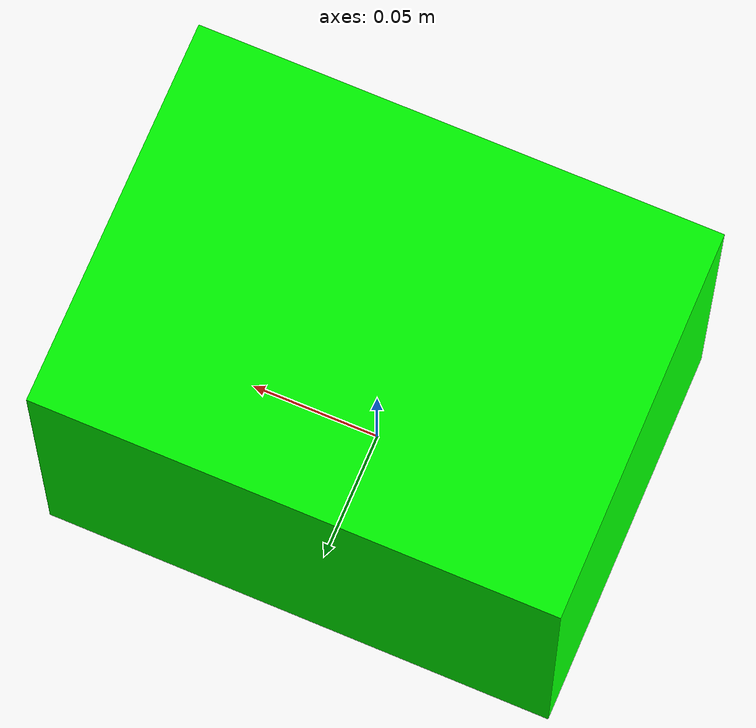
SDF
<?xml version="1.0"?>
<sdf version='1.6'>
<model name="simple_cuboid">
  <link name="base_link">
    <inertial>
      <pose frame=''>0 0 0.075 0 0 0 </pose>

      <mass>0.1</mass>
        <inertia>
          <ixx>0.000363</ixx>
          <ixy>0</ixy>
          <ixz>0</ixz>
          <iyy>0.000363</iyy>
          <iyz>0</iyz>
          <izz>0.000006</izz>
        </inertia>
    </inertial>
    <visual name='pedestal_visual'>
      <pose frame=''>0 0 0.075 0 0 0</pose>
      <geometry>
        <box>
          <size>0.20 0.15 0.15</size>
        </box>
      </geometry>
      <material>
        <diffuse>0 1 0 0.9</diffuse>
      </material>
    </visual>

    <collision name='box_collision'>
      <pose frame=''>0 0 0.075 0 0 0</pose>
      <geometry>
        <box>
          <size>0.195 0.145 0.145</size>
        </box>
      </geometry>
      <material>
        <diffuse>0 1 0 0.9</diffuse>
      </material>
    </collision>

    <collision name='point_collision1'>
      <pose frame=''>0.1 0.075 0 0 0 0</pose>
      <geometry>
        <sphere><radius>1e-7</radius></sphere>
      </geometry>
    </collision>
    <collision name='point_collision2'>
      <pose frame=''>0.1 -0.075 0 0 0 0</pose>
      <geometry>
        <sphere><radius>1e-7</radius></sphere>
      </geometry>
    </collision>
    <collision name='point_collision3'>
      <pose frame=''>-0.1 0.075 0 0 0 0</pose>
      <geometry>
        <sphere><radius>1e-7</radius></sphere>
      </geometry>
    </collision>
    <collision name='point_collision4'>
      <pose frame=''>-0.1 -0.075 0 0 0 0</pose>
      <geometry>
        <sphere><radius>1e-7</radius></sphere>
      </geometry>
    </collision>

    <collision name='point_collision5'>
      <pose frame=''>0.1 0.075 0.15 0 0 0</pose>
      <geometry>
        <sphere><radius>1e-7</radius></sphere>
      </geometry>
    </collision>
    <collision name='point_collision6'>
      <pose frame=''>0.1 -0.075 0.15 0 0 0</pose>
      <geometry>
        <sphere><radius>1e-7</radius></sphere>
      </geometry>
    </collision>
    <collision name='point_collision7'>
      <pose frame=''>-0.1 0.075 0.15 0 0 0</pose>
      <geometry>
        <sphere><radius>1e-7</radius></sphere>
      </geometry>
    </collision>
    <collision name='point_collision8'>
      <pose frame=''>-0.1 -0.075 0.15 0 0 0</pose>
      <geometry>
        <sphere><radius>1e-7</radius></sphere>
      </geometry>
    </collision>

   </link>
</model>
</sdf>
